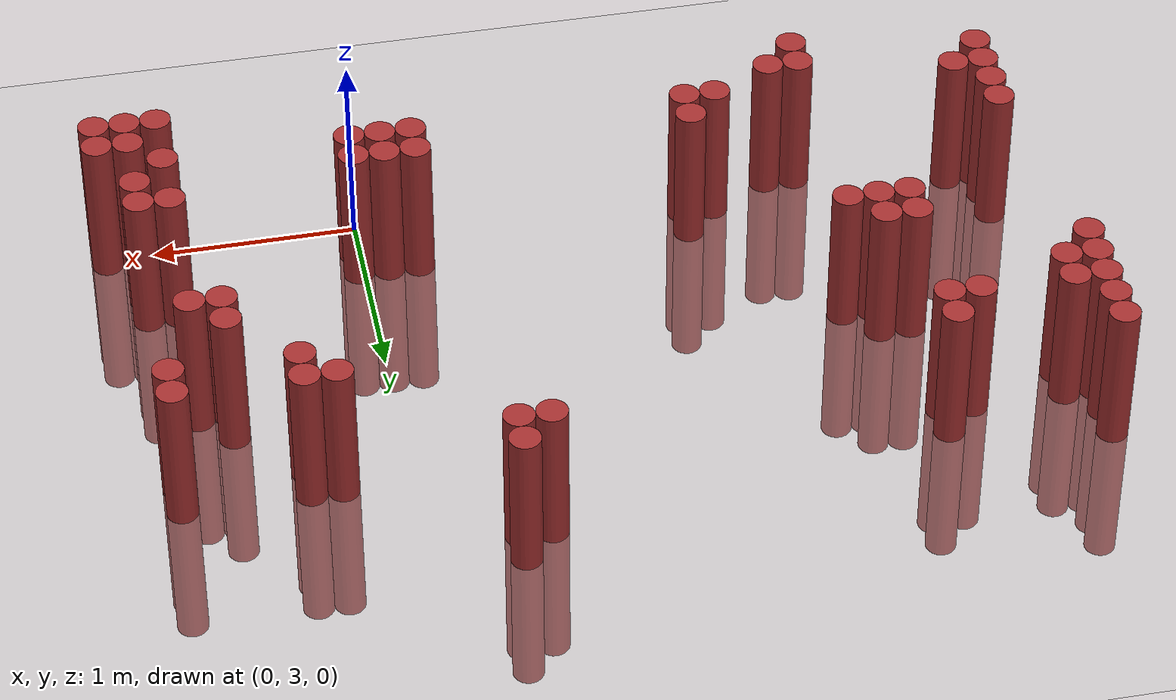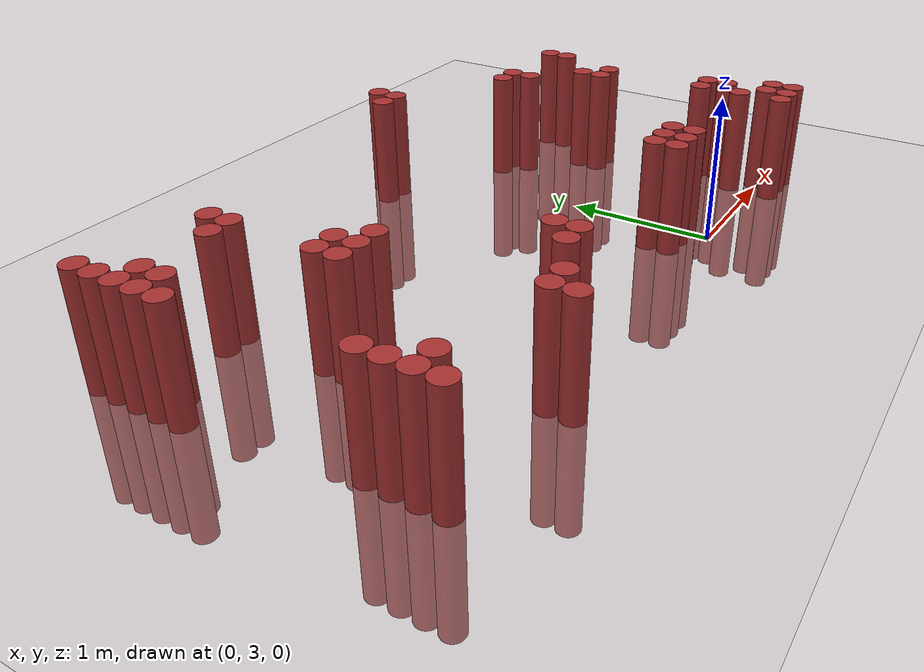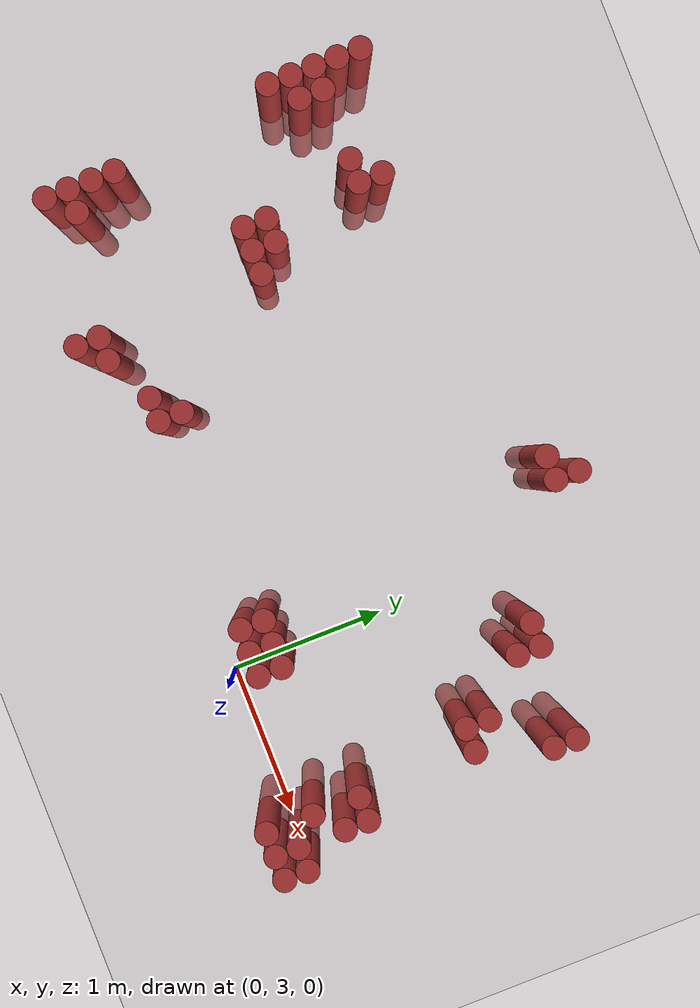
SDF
<sdf version="1.6">
 <world name="default">
  <model name="ground_plane">
   <static>1</static>
   <link name="link">
    <collision name="collision">
     <geometry><plane><normal>0 0 1</normal><size>100 100</size></plane></geometry>
     <surface><friction><ode><mu>100</mu><mu2>50</mu2></ode></friction></surface>
    </collision>
    <visual name="visual">
     <cast_shadows>0</cast_shadows>
     <geometry><plane><normal>0 0 1</normal><size>100 100</size></plane></geometry>
     <material>
      <script><uri>file://media/materials/scripts/gazebo.material</uri><name>Gazebo/Grey</name></script>
     </material>
    </visual>
   </link>
  </model>
  <model name="unit_cylinder_282">
   <static>1</static>
   <pose>-3.275000 4.525000 0.000000 0.000000 0.000000 0.000000</pose>
   <link name="link">
    <inertial>
     <mass>1</mass>
     <inertia><ixx>0.145833</ixx><ixy>0</ixy><ixz>0</ixz><iyy>0.145833</iyy><iyz>0</iyz><izz>0.125</izz></inertia>
    </inertial>
    <collision name="collision">
     <geometry><cylinder><radius>0.075000</radius><length>1.5</length></cylinder></geometry>
    </collision>
    <visual name="visual">
     <geometry><cylinder><radius>0.075000</radius><length>1.5</length></cylinder></geometry>
     <material>
      <ambient>0.648000 0.192000 0.192000 1</ambient>
      <diffuse>0.648000 0.192000 0.192000 1</diffuse>
     </material>
     <material>
      <script><name>Gazebo/Grey</name><uri>file://media/materials/scripts/gazebo.material</uri></script>
     </material>
    </visual>
   </link>
  </model>
  <model name="unit_cylinder_283">
   <static>1</static>
   <pose>-3.275000 4.675000 0.000000 0.000000 0.000000 0.000000</pose>
   <link name="link">
    <inertial>
     <mass>1</mass>
     <inertia><ixx>0.145833</ixx><ixy>0</ixy><ixz>0</ixz><iyy>0.145833</iyy><iyz>0</iyz><izz>0.125</izz></inertia>
    </inertial>
    <collision name="collision">
     <geometry><cylinder><radius>0.075000</radius><length>1.5</length></cylinder></geometry>
    </collision>
    <visual name="visual">
     <geometry><cylinder><radius>0.075000</radius><length>1.5</length></cylinder></geometry>
     <material>
      <ambient>0.648000 0.192000 0.192000 1</ambient>
      <diffuse>0.648000 0.192000 0.192000 1</diffuse>
     </material>
     <material>
      <script><name>Gazebo/Grey</name><uri>file://media/materials/scripts/gazebo.material</uri></script>
     </material>
    </visual>
   </link>
  </model>
  <model name="unit_cylinder_284">
   <static>1</static>
   <pose>-3.275000 4.825000 0.000000 0.000000 0.000000 0.000000</pose>
   <link name="link">
    <inertial>
     <mass>1</mass>
     <inertia><ixx>0.145833</ixx><ixy>0</ixy><ixz>0</ixz><iyy>0.145833</iyy><iyz>0</iyz><izz>0.125</izz></inertia>
    </inertial>
    <collision name="collision">
     <geometry><cylinder><radius>0.075000</radius><length>1.5</length></cylinder></geometry>
    </collision>
    <visual name="visual">
     <geometry><cylinder><radius>0.075000</radius><length>1.5</length></cylinder></geometry>
     <material>
      <ambient>0.648000 0.192000 0.192000 1</ambient>
      <diffuse>0.648000 0.192000 0.192000 1</diffuse>
     </material>
     <material>
      <script><name>Gazebo/Grey</name><uri>file://media/materials/scripts/gazebo.material</uri></script>
     </material>
    </visual>
   </link>
  </model>
  <model name="unit_cylinder_285">
   <static>1</static>
   <pose>-3.275000 4.975000 0.000000 0.000000 0.000000 0.000000</pose>
   <link name="link">
    <inertial>
     <mass>1</mass>
     <inertia><ixx>0.145833</ixx><ixy>0</ixy><ixz>0</ixz><iyy>0.145833</iyy><iyz>0</iyz><izz>0.125</izz></inertia>
    </inertial>
    <collision name="collision">
     <geometry><cylinder><radius>0.075000</radius><length>1.5</length></cylinder></geometry>
    </collision>
    <visual name="visual">
     <geometry><cylinder><radius>0.075000</radius><length>1.5</length></cylinder></geometry>
     <material>
      <ambient>0.648000 0.192000 0.192000 1</ambient>
      <diffuse>0.648000 0.192000 0.192000 1</diffuse>
     </material>
     <material>
      <script><name>Gazebo/Grey</name><uri>file://media/materials/scripts/gazebo.material</uri></script>
     </material>
    </visual>
   </link>
  </model>
  <model name="unit_cylinder_286">
   <static>1</static>
   <pose>-3.275000 5.125000 0.000000 0.000000 0.000000 0.000000</pose>
   <link name="link">
    <inertial>
     <mass>1</mass>
     <inertia><ixx>0.145833</ixx><ixy>0</ixy><ixz>0</ixz><iyy>0.145833</iyy><iyz>0</iyz><izz>0.125</izz></inertia>
    </inertial>
    <collision name="collision">
     <geometry><cylinder><radius>0.075000</radius><length>1.5</length></cylinder></geometry>
    </collision>
    <visual name="visual">
     <geometry><cylinder><radius>0.075000</radius><length>1.5</length></cylinder></geometry>
     <material>
      <ambient>0.648000 0.192000 0.192000 1</ambient>
      <diffuse>0.648000 0.192000 0.192000 1</diffuse>
     </material>
     <material>
      <script><name>Gazebo/Grey</name><uri>file://media/materials/scripts/gazebo.material</uri></script>
     </material>
    </visual>
   </link>
  </model>
  <model name="unit_cylinder_299">
   <static>1</static>
   <pose>-3.125000 3.025000 0.000000 0.000000 0.000000 0.000000</pose>
   <link name="link">
    <inertial>
     <mass>1</mass>
     <inertia><ixx>0.145833</ixx><ixy>0</ixy><ixz>0</ixz><iyy>0.145833</iyy><iyz>0</iyz><izz>0.125</izz></inertia>
    </inertial>
    <collision name="collision">
     <geometry><cylinder><radius>0.075000</radius><length>1.5</length></cylinder></geometry>
    </collision>
    <visual name="visual">
     <geometry><cylinder><radius>0.075000</radius><length>1.5</length></cylinder></geometry>
     <material>
      <ambient>0.648000 0.192000 0.192000 1</ambient>
      <diffuse>0.648000 0.192000 0.192000 1</diffuse>
     </material>
     <material>
      <script><name>Gazebo/Grey</name><uri>file://media/materials/scripts/gazebo.material</uri></script>
     </material>
    </visual>
   </link>
  </model>
  <model name="unit_cylinder_300">
   <static>1</static>
   <pose>-3.125000 3.175000 0.000000 0.000000 0.000000 0.000000</pose>
   <link name="link">
    <inertial>
     <mass>1</mass>
     <inertia><ixx>0.145833</ixx><ixy>0</ixy><ixz>0</ixz><iyy>0.145833</iyy><iyz>0</iyz><izz>0.125</izz></inertia>
    </inertial>
    <collision name="collision">
     <geometry><cylinder><radius>0.075000</radius><length>1.5</length></cylinder></geometry>
    </collision>
    <visual name="visual">
     <geometry><cylinder><radius>0.075000</radius><length>1.5</length></cylinder></geometry>
     <material>
      <ambient>0.648000 0.192000 0.192000 1</ambient>
      <diffuse>0.648000 0.192000 0.192000 1</diffuse>
     </material>
     <material>
      <script><name>Gazebo/Grey</name><uri>file://media/materials/scripts/gazebo.material</uri></script>
     </material>
    </visual>
   </link>
  </model>
  <model name="unit_cylinder_301">
   <static>1</static>
   <pose>-3.125000 3.325000 0.000000 0.000000 0.000000 0.000000</pose>
   <link name="link">
    <inertial>
     <mass>1</mass>
     <inertia><ixx>0.145833</ixx><ixy>0</ixy><ixz>0</ixz><iyy>0.145833</iyy><iyz>0</iyz><izz>0.125</izz></inertia>
    </inertial>
    <collision name="collision">
     <geometry><cylinder><radius>0.075000</radius><length>1.5</length></cylinder></geometry>
    </collision>
    <visual name="visual">
     <geometry><cylinder><radius>0.075000</radius><length>1.5</length></cylinder></geometry>
     <material>
      <ambient>0.648000 0.192000 0.192000 1</ambient>
      <diffuse>0.648000 0.192000 0.192000 1</diffuse>
     </material>
     <material>
      <script><name>Gazebo/Grey</name><uri>file://media/materials/scripts/gazebo.material</uri></script>
     </material>
    </visual>
   </link>
  </model>
  <model name="unit_cylinder_302">
   <static>1</static>
   <pose>-3.125000 3.475000 0.000000 0.000000 0.000000 0.000000</pose>
   <link name="link">
    <inertial>
     <mass>1</mass>
     <inertia><ixx>0.145833</ixx><ixy>0</ixy><ixz>0</ixz><iyy>0.145833</iyy><iyz>0</iyz><izz>0.125</izz></inertia>
    </inertial>
    <collision name="collision">
     <geometry><cylinder><radius>0.075000</radius><length>1.5</length></cylinder></geometry>
    </collision>
    <visual name="visual">
     <geometry><cylinder><radius>0.075000</radius><length>1.5</length></cylinder></geometry>
     <material>
      <ambient>0.648000 0.192000 0.192000 1</ambient>
      <diffuse>0.648000 0.192000 0.192000 1</diffuse>
     </material>
     <material>
      <script><name>Gazebo/Grey</name><uri>file://media/materials/scripts/gazebo.material</uri></script>
     </material>
    </visual>
   </link>
  </model>
  <model name="unit_cylinder_303">
   <static>1</static>
   <pose>-3.125000 4.675000 0.000000 0.000000 0.000000 0.000000</pose>
   <link name="link">
    <inertial>
     <mass>1</mass>
     <inertia><ixx>0.145833</ixx><ixy>0</ixy><ixz>0</ixz><iyy>0.145833</iyy><iyz>0</iyz><izz>0.125</izz></inertia>
    </inertial>
    <collision name="collision">
     <geometry><cylinder><radius>0.075000</radius><length>1.5</length></cylinder></geometry>
    </collision>
    <visual name="visual">
     <geometry><cylinder><radius>0.075000</radius><length>1.5</length></cylinder></geometry>
     <material>
      <ambient>0.648000 0.192000 0.192000 1</ambient>
      <diffuse>0.648000 0.192000 0.192000 1</diffuse>
     </material>
     <material>
      <script><name>Gazebo/Grey</name><uri>file://media/materials/scripts/gazebo.material</uri></script>
     </material>
    </visual>
   </link>
  </model>
  <model name="unit_cylinder_304">
   <static>1</static>
   <pose>-3.125000 4.825000 0.000000 0.000000 0.000000 0.000000</pose>
   <link name="link">
    <inertial>
     <mass>1</mass>
     <inertia><ixx>0.145833</ixx><ixy>0</ixy><ixz>0</ixz><iyy>0.145833</iyy><iyz>0</iyz><izz>0.125</izz></inertia>
    </inertial>
    <collision name="collision">
     <geometry><cylinder><radius>0.075000</radius><length>1.5</length></cylinder></geometry>
    </collision>
    <visual name="visual">
     <geometry><cylinder><radius>0.075000</radius><length>1.5</length></cylinder></geometry>
     <material>
      <ambient>0.648000 0.192000 0.192000 1</ambient>
      <diffuse>0.648000 0.192000 0.192000 1</diffuse>
     </material>
     <material>
      <script><name>Gazebo/Grey</name><uri>file://media/materials/scripts/gazebo.material</uri></script>
     </material>
    </visual>
   </link>
  </model>
  <model name="unit_cylinder_308">
   <static>1</static>
   <pose>-2.975000 3.175000 0.000000 0.000000 0.000000 0.000000</pose>
   <link name="link">
    <inertial>
     <mass>1</mass>
     <inertia><ixx>0.145833</ixx><ixy>0</ixy><ixz>0</ixz><iyy>0.145833</iyy><iyz>0</iyz><izz>0.125</izz></inertia>
    </inertial>
    <collision name="collision">
     <geometry><cylinder><radius>0.075000</radius><length>1.5</length></cylinder></geometry>
    </collision>
    <visual name="visual">
     <geometry><cylinder><radius>0.075000</radius><length>1.5</length></cylinder></geometry>
     <material>
      <ambient>0.648000 0.192000 0.192000 1</ambient>
      <diffuse>0.648000 0.192000 0.192000 1</diffuse>
     </material>
     <material>
      <script><name>Gazebo/Grey</name><uri>file://media/materials/scripts/gazebo.material</uri></script>
     </material>
    </visual>
   </link>
  </model>
  <model name="unit_cylinder_316">
   <static>1</static>
   <pose>-2.675000 4.825000 0.000000 0.000000 0.000000 0.000000</pose>
   <link name="link">
    <inertial>
     <mass>1</mass>
     <inertia><ixx>0.145833</ixx><ixy>0</ixy><ixz>0</ixz><iyy>0.145833</iyy><iyz>0</iyz><izz>0.125</izz></inertia>
    </inertial>
    <collision name="collision">
     <geometry><cylinder><radius>0.075000</radius><length>1.5</length></cylinder></geometry>
    </collision>
    <visual name="visual">
     <geometry><cylinder><radius>0.075000</radius><length>1.5</length></cylinder></geometry>
     <material>
      <ambient>0.648000 0.192000 0.192000 1</ambient>
      <diffuse>0.648000 0.192000 0.192000 1</diffuse>
     </material>
     <material>
      <script><name>Gazebo/Grey</name><uri>file://media/materials/scripts/gazebo.material</uri></script>
     </material>
    </visual>
   </link>
  </model>
  <model name="unit_cylinder_319">
   <static>1</static>
   <pose>-2.525000 4.075000 0.000000 0.000000 0.000000 0.000000</pose>
   <link name="link">
    <inertial>
     <mass>1</mass>
     <inertia><ixx>0.145833</ixx><ixy>0</ixy><ixz>0</ixz><iyy>0.145833</iyy><iyz>0</iyz><izz>0.125</izz></inertia>
    </inertial>
    <collision name="collision">
     <geometry><cylinder><radius>0.075000</radius><length>1.5</length></cylinder></geometry>
    </collision>
    <visual name="visual">
     <geometry><cylinder><radius>0.075000</radius><length>1.5</length></cylinder></geometry>
     <material>
      <ambient>0.648000 0.192000 0.192000 1</ambient>
      <diffuse>0.648000 0.192000 0.192000 1</diffuse>
     </material>
     <material>
      <script><name>Gazebo/Grey</name><uri>file://media/materials/scripts/gazebo.material</uri></script>
     </material>
    </visual>
   </link>
  </model>
  <model name="unit_cylinder_320">
   <static>1</static>
   <pose>-2.525000 4.225000 0.000000 0.000000 0.000000 0.000000</pose>
   <link name="link">
    <inertial>
     <mass>1</mass>
     <inertia><ixx>0.145833</ixx><ixy>0</ixy><ixz>0</ixz><iyy>0.145833</iyy><iyz>0</iyz><izz>0.125</izz></inertia>
    </inertial>
    <collision name="collision">
     <geometry><cylinder><radius>0.075000</radius><length>1.5</length></cylinder></geometry>
    </collision>
    <visual name="visual">
     <geometry><cylinder><radius>0.075000</radius><length>1.5</length></cylinder></geometry>
     <material>
      <ambient>0.648000 0.192000 0.192000 1</ambient>
      <diffuse>0.648000 0.192000 0.192000 1</diffuse>
     </material>
     <material>
      <script><name>Gazebo/Grey</name><uri>file://media/materials/scripts/gazebo.material</uri></script>
     </material>
    </visual>
   </link>
  </model>
  <model name="unit_cylinder_321">
   <static>1</static>
   <pose>-2.525000 4.825000 0.000000 0.000000 0.000000 0.000000</pose>
   <link name="link">
    <inertial>
     <mass>1</mass>
     <inertia><ixx>0.145833</ixx><ixy>0</ixy><ixz>0</ixz><iyy>0.145833</iyy><iyz>0</iyz><izz>0.125</izz></inertia>
    </inertial>
    <collision name="collision">
     <geometry><cylinder><radius>0.075000</radius><length>1.5</length></cylinder></geometry>
    </collision>
    <visual name="visual">
     <geometry><cylinder><radius>0.075000</radius><length>1.5</length></cylinder></geometry>
     <material>
      <ambient>0.648000 0.192000 0.192000 1</ambient>
      <diffuse>0.648000 0.192000 0.192000 1</diffuse>
     </material>
     <material>
      <script><name>Gazebo/Grey</name><uri>file://media/materials/scripts/gazebo.material</uri></script>
     </material>
    </visual>
   </link>
  </model>
  <model name="unit_cylinder_322">
   <static>1</static>
   <pose>-2.525000 4.975000 0.000000 0.000000 0.000000 0.000000</pose>
   <link name="link">
    <inertial>
     <mass>1</mass>
     <inertia><ixx>0.145833</ixx><ixy>0</ixy><ixz>0</ixz><iyy>0.145833</iyy><iyz>0</iyz><izz>0.125</izz></inertia>
    </inertial>
    <collision name="collision">
     <geometry><cylinder><radius>0.075000</radius><length>1.5</length></cylinder></geometry>
    </collision>
    <visual name="visual">
     <geometry><cylinder><radius>0.075000</radius><length>1.5</length></cylinder></geometry>
     <material>
      <ambient>0.648000 0.192000 0.192000 1</ambient>
      <diffuse>0.648000 0.192000 0.192000 1</diffuse>
     </material>
     <material>
      <script><name>Gazebo/Grey</name><uri>file://media/materials/scripts/gazebo.material</uri></script>
     </material>
    </visual>
   </link>
  </model>
  <model name="unit_cylinder_325">
   <static>1</static>
   <pose>-2.375000 4.075000 0.000000 0.000000 0.000000 0.000000</pose>
   <link name="link">
    <inertial>
     <mass>1</mass>
     <inertia><ixx>0.145833</ixx><ixy>0</ixy><ixz>0</ixz><iyy>0.145833</iyy><iyz>0</iyz><izz>0.125</izz></inertia>
    </inertial>
    <collision name="collision">
     <geometry><cylinder><radius>0.075000</radius><length>1.5</length></cylinder></geometry>
    </collision>
    <visual name="visual">
     <geometry><cylinder><radius>0.075000</radius><length>1.5</length></cylinder></geometry>
     <material>
      <ambient>0.648000 0.192000 0.192000 1</ambient>
      <diffuse>0.648000 0.192000 0.192000 1</diffuse>
     </material>
     <material>
      <script><name>Gazebo/Grey</name><uri>file://media/materials/scripts/gazebo.material</uri></script>
     </material>
    </visual>
   </link>
  </model>
  <model name="unit_cylinder_326">
   <static>1</static>
   <pose>-2.375000 4.225000 0.000000 0.000000 0.000000 0.000000</pose>
   <link name="link">
    <inertial>
     <mass>1</mass>
     <inertia><ixx>0.145833</ixx><ixy>0</ixy><ixz>0</ixz><iyy>0.145833</iyy><iyz>0</iyz><izz>0.125</izz></inertia>
    </inertial>
    <collision name="collision">
     <geometry><cylinder><radius>0.075000</radius><length>1.5</length></cylinder></geometry>
    </collision>
    <visual name="visual">
     <geometry><cylinder><radius>0.075000</radius><length>1.5</length></cylinder></geometry>
     <material>
      <ambient>0.648000 0.192000 0.192000 1</ambient>
      <diffuse>0.648000 0.192000 0.192000 1</diffuse>
     </material>
     <material>
      <script><name>Gazebo/Grey</name><uri>file://media/materials/scripts/gazebo.material</uri></script>
     </material>
    </visual>
   </link>
  </model>
  <model name="unit_cylinder_328">
   <static>1</static>
   <pose>-2.225000 2.875000 0.000000 0.000000 0.000000 0.000000</pose>
   <link name="link">
    <inertial>
     <mass>1</mass>
     <inertia><ixx>0.145833</ixx><ixy>0</ixy><ixz>0</ixz><iyy>0.145833</iyy><iyz>0</iyz><izz>0.125</izz></inertia>
    </inertial>
    <collision name="collision">
     <geometry><cylinder><radius>0.075000</radius><length>1.5</length></cylinder></geometry>
    </collision>
    <visual name="visual">
     <geometry><cylinder><radius>0.075000</radius><length>1.5</length></cylinder></geometry>
     <material>
      <ambient>0.648000 0.192000 0.192000 1</ambient>
      <diffuse>0.648000 0.192000 0.192000 1</diffuse>
     </material>
     <material>
      <script><name>Gazebo/Grey</name><uri>file://media/materials/scripts/gazebo.material</uri></script>
     </material>
    </visual>
   </link>
  </model>
  <model name="unit_cylinder_329">
   <static>1</static>
   <pose>-2.225000 3.025000 0.000000 0.000000 0.000000 0.000000</pose>
   <link name="link">
    <inertial>
     <mass>1</mass>
     <inertia><ixx>0.145833</ixx><ixy>0</ixy><ixz>0</ixz><iyy>0.145833</iyy><iyz>0</iyz><izz>0.125</izz></inertia>
    </inertial>
    <collision name="collision">
     <geometry><cylinder><radius>0.075000</radius><length>1.5</length></cylinder></geometry>
    </collision>
    <visual name="visual">
     <geometry><cylinder><radius>0.075000</radius><length>1.5</length></cylinder></geometry>
     <material>
      <ambient>0.648000 0.192000 0.192000 1</ambient>
      <diffuse>0.648000 0.192000 0.192000 1</diffuse>
     </material>
     <material>
      <script><name>Gazebo/Grey</name><uri>file://media/materials/scripts/gazebo.material</uri></script>
     </material>
    </visual>
   </link>
  </model>
  <model name="unit_cylinder_330">
   <static>1</static>
   <pose>-2.225000 4.075000 0.000000 0.000000 0.000000 0.000000</pose>
   <link name="link">
    <inertial>
     <mass>1</mass>
     <inertia><ixx>0.145833</ixx><ixy>0</ixy><ixz>0</ixz><iyy>0.145833</iyy><iyz>0</iyz><izz>0.125</izz></inertia>
    </inertial>
    <collision name="collision">
     <geometry><cylinder><radius>0.075000</radius><length>1.5</length></cylinder></geometry>
    </collision>
    <visual name="visual">
     <geometry><cylinder><radius>0.075000</radius><length>1.5</length></cylinder></geometry>
     <material>
      <ambient>0.648000 0.192000 0.192000 1</ambient>
      <diffuse>0.648000 0.192000 0.192000 1</diffuse>
     </material>
     <material>
      <script><name>Gazebo/Grey</name><uri>file://media/materials/scripts/gazebo.material</uri></script>
     </material>
    </visual>
   </link>
  </model>
  <model name="unit_cylinder_332">
   <static>1</static>
   <pose>-2.075000 3.025000 0.000000 0.000000 0.000000 0.000000</pose>
   <link name="link">
    <inertial>
     <mass>1</mass>
     <inertia><ixx>0.145833</ixx><ixy>0</ixy><ixz>0</ixz><iyy>0.145833</iyy><iyz>0</iyz><izz>0.125</izz></inertia>
    </inertial>
    <collision name="collision">
     <geometry><cylinder><radius>0.075000</radius><length>1.5</length></cylinder></geometry>
    </collision>
    <visual name="visual">
     <geometry><cylinder><radius>0.075000</radius><length>1.5</length></cylinder></geometry>
     <material>
      <ambient>0.648000 0.192000 0.192000 1</ambient>
      <diffuse>0.648000 0.192000 0.192000 1</diffuse>
     </material>
     <material>
      <script><name>Gazebo/Grey</name><uri>file://media/materials/scripts/gazebo.material</uri></script>
     </material>
    </visual>
   </link>
  </model>
  <model name="unit_cylinder_342">
   <static>1</static>
   <pose>-1.775000 3.175000 0.000000 0.000000 0.000000 0.000000</pose>
   <link name="link">
    <inertial>
     <mass>1</mass>
     <inertia><ixx>0.145833</ixx><ixy>0</ixy><ixz>0</ixz><iyy>0.145833</iyy><iyz>0</iyz><izz>0.125</izz></inertia>
    </inertial>
    <collision name="collision">
     <geometry><cylinder><radius>0.075000</radius><length>1.5</length></cylinder></geometry>
    </collision>
    <visual name="visual">
     <geometry><cylinder><radius>0.075000</radius><length>1.5</length></cylinder></geometry>
     <material>
      <ambient>0.648000 0.192000 0.192000 1</ambient>
      <diffuse>0.648000 0.192000 0.192000 1</diffuse>
     </material>
     <material>
      <script><name>Gazebo/Grey</name><uri>file://media/materials/scripts/gazebo.material</uri></script>
     </material>
    </visual>
   </link>
  </model>
  <model name="unit_cylinder_345">
   <static>1</static>
   <pose>-1.625000 3.175000 0.000000 0.000000 0.000000 0.000000</pose>
   <link name="link">
    <inertial>
     <mass>1</mass>
     <inertia><ixx>0.145833</ixx><ixy>0</ixy><ixz>0</ixz><iyy>0.145833</iyy><iyz>0</iyz><izz>0.125</izz></inertia>
    </inertial>
    <collision name="collision">
     <geometry><cylinder><radius>0.075000</radius><length>1.5</length></cylinder></geometry>
    </collision>
    <visual name="visual">
     <geometry><cylinder><radius>0.075000</radius><length>1.5</length></cylinder></geometry>
     <material>
      <ambient>0.648000 0.192000 0.192000 1</ambient>
      <diffuse>0.648000 0.192000 0.192000 1</diffuse>
     </material>
     <material>
      <script><name>Gazebo/Grey</name><uri>file://media/materials/scripts/gazebo.material</uri></script>
     </material>
    </visual>
   </link>
  </model>
  <model name="unit_cylinder_346">
   <static>1</static>
   <pose>-1.625000 3.325000 0.000000 0.000000 0.000000 0.000000</pose>
   <link name="link">
    <inertial>
     <mass>1</mass>
     <inertia><ixx>0.145833</ixx><ixy>0</ixy><ixz>0</ixz><iyy>0.145833</iyy><iyz>0</iyz><izz>0.125</izz></inertia>
    </inertial>
    <collision name="collision">
     <geometry><cylinder><radius>0.075000</radius><length>1.5</length></cylinder></geometry>
    </collision>
    <visual name="visual">
     <geometry><cylinder><radius>0.075000</radius><length>1.5</length></cylinder></geometry>
     <material>
      <ambient>0.648000 0.192000 0.192000 1</ambient>
      <diffuse>0.648000 0.192000 0.192000 1</diffuse>
     </material>
     <material>
      <script><name>Gazebo/Grey</name><uri>file://media/materials/scripts/gazebo.material</uri></script>
     </material>
    </visual>
   </link>
  </model>
  <model name="unit_cylinder_364">
   <static>1</static>
   <pose>-0.575000 5.275000 0.000000 0.000000 0.000000 0.000000</pose>
   <link name="link">
    <inertial>
     <mass>1</mass>
     <inertia><ixx>0.145833</ixx><ixy>0</ixy><ixz>0</ixz><iyy>0.145833</iyy><iyz>0</iyz><izz>0.125</izz></inertia>
    </inertial>
    <collision name="collision">
     <geometry><cylinder><radius>0.075000</radius><length>1.5</length></cylinder></geometry>
    </collision>
    <visual name="visual">
     <geometry><cylinder><radius>0.075000</radius><length>1.5</length></cylinder></geometry>
     <material>
      <ambient>0.648000 0.192000 0.192000 1</ambient>
      <diffuse>0.648000 0.192000 0.192000 1</diffuse>
     </material>
     <material>
      <script><name>Gazebo/Grey</name><uri>file://media/materials/scripts/gazebo.material</uri></script>
     </material>
    </visual>
   </link>
  </model>
  <model name="unit_cylinder_371">
   <static>1</static>
   <pose>-0.425000 5.275000 0.000000 0.000000 0.000000 0.000000</pose>
   <link name="link">
    <inertial>
     <mass>1</mass>
     <inertia><ixx>0.145833</ixx><ixy>0</ixy><ixz>0</ixz><iyy>0.145833</iyy><iyz>0</iyz><izz>0.125</izz></inertia>
    </inertial>
    <collision name="collision">
     <geometry><cylinder><radius>0.075000</radius><length>1.5</length></cylinder></geometry>
    </collision>
    <visual name="visual">
     <geometry><cylinder><radius>0.075000</radius><length>1.5</length></cylinder></geometry>
     <material>
      <ambient>0.648000 0.192000 0.192000 1</ambient>
      <diffuse>0.648000 0.192000 0.192000 1</diffuse>
     </material>
     <material>
      <script><name>Gazebo/Grey</name><uri>file://media/materials/scripts/gazebo.material</uri></script>
     </material>
    </visual>
   </link>
  </model>
  <model name="unit_cylinder_372">
   <static>1</static>
   <pose>-0.425000 5.425000 0.000000 0.000000 0.000000 0.000000</pose>
   <link name="link">
    <inertial>
     <mass>1</mass>
     <inertia><ixx>0.145833</ixx><ixy>0</ixy><ixz>0</ixz><iyy>0.145833</iyy><iyz>0</iyz><izz>0.125</izz></inertia>
    </inertial>
    <collision name="collision">
     <geometry><cylinder><radius>0.075000</radius><length>1.5</length></cylinder></geometry>
    </collision>
    <visual name="visual">
     <geometry><cylinder><radius>0.075000</radius><length>1.5</length></cylinder></geometry>
     <material>
      <ambient>0.648000 0.192000 0.192000 1</ambient>
      <diffuse>0.648000 0.192000 0.192000 1</diffuse>
     </material>
     <material>
      <script><name>Gazebo/Grey</name><uri>file://media/materials/scripts/gazebo.material</uri></script>
     </material>
    </visual>
   </link>
  </model>
  <model name="unit_cylinder_376">
   <static>1</static>
   <pose>-0.275000 3.175000 0.000000 0.000000 0.000000 0.000000</pose>
   <link name="link">
    <inertial>
     <mass>1</mass>
     <inertia><ixx>0.145833</ixx><ixy>0</ixy><ixz>0</ixz><iyy>0.145833</iyy><iyz>0</iyz><izz>0.125</izz></inertia>
    </inertial>
    <collision name="collision">
     <geometry><cylinder><radius>0.075000</radius><length>1.5</length></cylinder></geometry>
    </collision>
    <visual name="visual">
     <geometry><cylinder><radius>0.075000</radius><length>1.5</length></cylinder></geometry>
     <material>
      <ambient>0.648000 0.192000 0.192000 1</ambient>
      <diffuse>0.648000 0.192000 0.192000 1</diffuse>
     </material>
     <material>
      <script><name>Gazebo/Grey</name><uri>file://media/materials/scripts/gazebo.material</uri></script>
     </material>
    </visual>
   </link>
  </model>
  <model name="unit_cylinder_377">
   <static>1</static>
   <pose>-0.275000 3.325000 0.000000 0.000000 0.000000 0.000000</pose>
   <link name="link">
    <inertial>
     <mass>1</mass>
     <inertia><ixx>0.145833</ixx><ixy>0</ixy><ixz>0</ixz><iyy>0.145833</iyy><iyz>0</iyz><izz>0.125</izz></inertia>
    </inertial>
    <collision name="collision">
     <geometry><cylinder><radius>0.075000</radius><length>1.5</length></cylinder></geometry>
    </collision>
    <visual name="visual">
     <geometry><cylinder><radius>0.075000</radius><length>1.5</length></cylinder></geometry>
     <material>
      <ambient>0.648000 0.192000 0.192000 1</ambient>
      <diffuse>0.648000 0.192000 0.192000 1</diffuse>
     </material>
     <material>
      <script><name>Gazebo/Grey</name><uri>file://media/materials/scripts/gazebo.material</uri></script>
     </material>
    </visual>
   </link>
  </model>
  <model name="unit_cylinder_381">
   <static>1</static>
   <pose>-0.125000 3.175000 0.000000 0.000000 0.000000 0.000000</pose>
   <link name="link">
    <inertial>
     <mass>1</mass>
     <inertia><ixx>0.145833</ixx><ixy>0</ixy><ixz>0</ixz><iyy>0.145833</iyy><iyz>0</iyz><izz>0.125</izz></inertia>
    </inertial>
    <collision name="collision">
     <geometry><cylinder><radius>0.075000</radius><length>1.5</length></cylinder></geometry>
    </collision>
    <visual name="visual">
     <geometry><cylinder><radius>0.075000</radius><length>1.5</length></cylinder></geometry>
     <material>
      <ambient>0.648000 0.192000 0.192000 1</ambient>
      <diffuse>0.648000 0.192000 0.192000 1</diffuse>
     </material>
     <material>
      <script><name>Gazebo/Grey</name><uri>file://media/materials/scripts/gazebo.material</uri></script>
     </material>
    </visual>
   </link>
  </model>
  <model name="unit_cylinder_382">
   <static>1</static>
   <pose>-0.125000 3.325000 0.000000 0.000000 0.000000 0.000000</pose>
   <link name="link">
    <inertial>
     <mass>1</mass>
     <inertia><ixx>0.145833</ixx><ixy>0</ixy><ixz>0</ixz><iyy>0.145833</iyy><iyz>0</iyz><izz>0.125</izz></inertia>
    </inertial>
    <collision name="collision">
     <geometry><cylinder><radius>0.075000</radius><length>1.5</length></cylinder></geometry>
    </collision>
    <visual name="visual">
     <geometry><cylinder><radius>0.075000</radius><length>1.5</length></cylinder></geometry>
     <material>
      <ambient>0.648000 0.192000 0.192000 1</ambient>
      <diffuse>0.648000 0.192000 0.192000 1</diffuse>
     </material>
     <material>
      <script><name>Gazebo/Grey</name><uri>file://media/materials/scripts/gazebo.material</uri></script>
     </material>
    </visual>
   </link>
  </model>
  <model name="unit_cylinder_384">
   <static>1</static>
   <pose>0.025000 3.175000 0.000000 0.000000 0.000000 0.000000</pose>
   <link name="link">
    <inertial>
     <mass>1</mass>
     <inertia><ixx>0.145833</ixx><ixy>0</ixy><ixz>0</ixz><iyy>0.145833</iyy><iyz>0</iyz><izz>0.125</izz></inertia>
    </inertial>
    <collision name="collision">
     <geometry><cylinder><radius>0.075000</radius><length>1.5</length></cylinder></geometry>
    </collision>
    <visual name="visual">
     <geometry><cylinder><radius>0.075000</radius><length>1.5</length></cylinder></geometry>
     <material>
      <ambient>0.648000 0.192000 0.192000 1</ambient>
      <diffuse>0.648000 0.192000 0.192000 1</diffuse>
     </material>
     <material>
      <script><name>Gazebo/Grey</name><uri>file://media/materials/scripts/gazebo.material</uri></script>
     </material>
    </visual>
   </link>
  </model>
  <model name="unit_cylinder_385">
   <static>1</static>
   <pose>0.025000 3.325000 0.000000 0.000000 0.000000 0.000000</pose>
   <link name="link">
    <inertial>
     <mass>1</mass>
     <inertia><ixx>0.145833</ixx><ixy>0</ixy><ixz>0</ixz><iyy>0.145833</iyy><iyz>0</iyz><izz>0.125</izz></inertia>
    </inertial>
    <collision name="collision">
     <geometry><cylinder><radius>0.075000</radius><length>1.5</length></cylinder></geometry>
    </collision>
    <visual name="visual">
     <geometry><cylinder><radius>0.075000</radius><length>1.5</length></cylinder></geometry>
     <material>
      <ambient>0.648000 0.192000 0.192000 1</ambient>
      <diffuse>0.648000 0.192000 0.192000 1</diffuse>
     </material>
     <material>
      <script><name>Gazebo/Grey</name><uri>file://media/materials/scripts/gazebo.material</uri></script>
     </material>
    </visual>
   </link>
  </model>
  <model name="unit_cylinder_388">
   <static>1</static>
   <pose>0.325000 4.825000 0.000000 0.000000 0.000000 0.000000</pose>
   <link name="link">
    <inertial>
     <mass>1</mass>
     <inertia><ixx>0.145833</ixx><ixy>0</ixy><ixz>0</ixz><iyy>0.145833</iyy><iyz>0</iyz><izz>0.125</izz></inertia>
    </inertial>
    <collision name="collision">
     <geometry><cylinder><radius>0.075000</radius><length>1.5</length></cylinder></geometry>
    </collision>
    <visual name="visual">
     <geometry><cylinder><radius>0.075000</radius><length>1.5</length></cylinder></geometry>
     <material>
      <ambient>0.648000 0.192000 0.192000 1</ambient>
      <diffuse>0.648000 0.192000 0.192000 1</diffuse>
     </material>
     <material>
      <script><name>Gazebo/Grey</name><uri>file://media/materials/scripts/gazebo.material</uri></script>
     </material>
    </visual>
   </link>
  </model>
  <model name="unit_cylinder_391">
   <static>1</static>
   <pose>0.475000 4.675000 0.000000 0.000000 0.000000 0.000000</pose>
   <link name="link">
    <inertial>
     <mass>1</mass>
     <inertia><ixx>0.145833</ixx><ixy>0</ixy><ixz>0</ixz><iyy>0.145833</iyy><iyz>0</iyz><izz>0.125</izz></inertia>
    </inertial>
    <collision name="collision">
     <geometry><cylinder><radius>0.075000</radius><length>1.5</length></cylinder></geometry>
    </collision>
    <visual name="visual">
     <geometry><cylinder><radius>0.075000</radius><length>1.5</length></cylinder></geometry>
     <material>
      <ambient>0.648000 0.192000 0.192000 1</ambient>
      <diffuse>0.648000 0.192000 0.192000 1</diffuse>
     </material>
     <material>
      <script><name>Gazebo/Grey</name><uri>file://media/materials/scripts/gazebo.material</uri></script>
     </material>
    </visual>
   </link>
  </model>
  <model name="unit_cylinder_392">
   <static>1</static>
   <pose>0.475000 4.825000 0.000000 0.000000 0.000000 0.000000</pose>
   <link name="link">
    <inertial>
     <mass>1</mass>
     <inertia><ixx>0.145833</ixx><ixy>0</ixy><ixz>0</ixz><iyy>0.145833</iyy><iyz>0</iyz><izz>0.125</izz></inertia>
    </inertial>
    <collision name="collision">
     <geometry><cylinder><radius>0.075000</radius><length>1.5</length></cylinder></geometry>
    </collision>
    <visual name="visual">
     <geometry><cylinder><radius>0.075000</radius><length>1.5</length></cylinder></geometry>
     <material>
      <ambient>0.648000 0.192000 0.192000 1</ambient>
      <diffuse>0.648000 0.192000 0.192000 1</diffuse>
     </material>
     <material>
      <script><name>Gazebo/Grey</name><uri>file://media/materials/scripts/gazebo.material</uri></script>
     </material>
    </visual>
   </link>
  </model>
  <model name="unit_cylinder_398">
   <static>1</static>
   <pose>0.775000 4.225000 0.000000 0.000000 0.000000 0.000000</pose>
   <link name="link">
    <inertial>
     <mass>1</mass>
     <inertia><ixx>0.145833</ixx><ixy>0</ixy><ixz>0</ixz><iyy>0.145833</iyy><iyz>0</iyz><izz>0.125</izz></inertia>
    </inertial>
    <collision name="collision">
     <geometry><cylinder><radius>0.075000</radius><length>1.5</length></cylinder></geometry>
    </collision>
    <visual name="visual">
     <geometry><cylinder><radius>0.075000</radius><length>1.5</length></cylinder></geometry>
     <material>
      <ambient>0.648000 0.192000 0.192000 1</ambient>
      <diffuse>0.648000 0.192000 0.192000 1</diffuse>
     </material>
     <material>
      <script><name>Gazebo/Grey</name><uri>file://media/materials/scripts/gazebo.material</uri></script>
     </material>
    </visual>
   </link>
  </model>
  <model name="unit_cylinder_399">
   <static>1</static>
   <pose>0.775000 4.375000 0.000000 0.000000 0.000000 0.000000</pose>
   <link name="link">
    <inertial>
     <mass>1</mass>
     <inertia><ixx>0.145833</ixx><ixy>0</ixy><ixz>0</ixz><iyy>0.145833</iyy><iyz>0</iyz><izz>0.125</izz></inertia>
    </inertial>
    <collision name="collision">
     <geometry><cylinder><radius>0.075000</radius><length>1.5</length></cylinder></geometry>
    </collision>
    <visual name="visual">
     <geometry><cylinder><radius>0.075000</radius><length>1.5</length></cylinder></geometry>
     <material>
      <ambient>0.648000 0.192000 0.192000 1</ambient>
      <diffuse>0.648000 0.192000 0.192000 1</diffuse>
     </material>
     <material>
      <script><name>Gazebo/Grey</name><uri>file://media/materials/scripts/gazebo.material</uri></script>
     </material>
    </visual>
   </link>
  </model>
  <model name="unit_cylinder_400">
   <static>1</static>
   <pose>0.925000 2.875000 0.000000 0.000000 0.000000 0.000000</pose>
   <link name="link">
    <inertial>
     <mass>1</mass>
     <inertia><ixx>0.145833</ixx><ixy>0</ixy><ixz>0</ixz><iyy>0.145833</iyy><iyz>0</iyz><izz>0.125</izz></inertia>
    </inertial>
    <collision name="collision">
     <geometry><cylinder><radius>0.075000</radius><length>1.5</length></cylinder></geometry>
    </collision>
    <visual name="visual">
     <geometry><cylinder><radius>0.075000</radius><length>1.5</length></cylinder></geometry>
     <material>
      <ambient>0.648000 0.192000 0.192000 1</ambient>
      <diffuse>0.648000 0.192000 0.192000 1</diffuse>
     </material>
     <material>
      <script><name>Gazebo/Grey</name><uri>file://media/materials/scripts/gazebo.material</uri></script>
     </material>
    </visual>
   </link>
  </model>
  <model name="unit_cylinder_401">
   <static>1</static>
   <pose>0.925000 3.175000 0.000000 0.000000 0.000000 0.000000</pose>
   <link name="link">
    <inertial>
     <mass>1</mass>
     <inertia><ixx>0.145833</ixx><ixy>0</ixy><ixz>0</ixz><iyy>0.145833</iyy><iyz>0</iyz><izz>0.125</izz></inertia>
    </inertial>
    <collision name="collision">
     <geometry><cylinder><radius>0.075000</radius><length>1.5</length></cylinder></geometry>
    </collision>
    <visual name="visual">
     <geometry><cylinder><radius>0.075000</radius><length>1.5</length></cylinder></geometry>
     <material>
      <ambient>0.648000 0.192000 0.192000 1</ambient>
      <diffuse>0.648000 0.192000 0.192000 1</diffuse>
     </material>
     <material>
      <script><name>Gazebo/Grey</name><uri>file://media/materials/scripts/gazebo.material</uri></script>
     </material>
    </visual>
   </link>
  </model>
  <model name="unit_cylinder_402">
   <static>1</static>
   <pose>0.925000 3.475000 0.000000 0.000000 0.000000 0.000000</pose>
   <link name="link">
    <inertial>
     <mass>1</mass>
     <inertia><ixx>0.145833</ixx><ixy>0</ixy><ixz>0</ixz><iyy>0.145833</iyy><iyz>0</iyz><izz>0.125</izz></inertia>
    </inertial>
    <collision name="collision">
     <geometry><cylinder><radius>0.075000</radius><length>1.5</length></cylinder></geometry>
    </collision>
    <visual name="visual">
     <geometry><cylinder><radius>0.075000</radius><length>1.5</length></cylinder></geometry>
     <material>
      <ambient>0.648000 0.192000 0.192000 1</ambient>
      <diffuse>0.648000 0.192000 0.192000 1</diffuse>
     </material>
     <material>
      <script><name>Gazebo/Grey</name><uri>file://media/materials/scripts/gazebo.material</uri></script>
     </material>
    </visual>
   </link>
  </model>
  <model name="unit_cylinder_403">
   <static>1</static>
   <pose>0.925000 4.225000 0.000000 0.000000 0.000000 0.000000</pose>
   <link name="link">
    <inertial>
     <mass>1</mass>
     <inertia><ixx>0.145833</ixx><ixy>0</ixy><ixz>0</ixz><iyy>0.145833</iyy><iyz>0</iyz><izz>0.125</izz></inertia>
    </inertial>
    <collision name="collision">
     <geometry><cylinder><radius>0.075000</radius><length>1.5</length></cylinder></geometry>
    </collision>
    <visual name="visual">
     <geometry><cylinder><radius>0.075000</radius><length>1.5</length></cylinder></geometry>
     <material>
      <ambient>0.648000 0.192000 0.192000 1</ambient>
      <diffuse>0.648000 0.192000 0.192000 1</diffuse>
     </material>
     <material>
      <script><name>Gazebo/Grey</name><uri>file://media/materials/scripts/gazebo.material</uri></script>
     </material>
    </visual>
   </link>
  </model>
  <model name="unit_cylinder_405">
   <static>1</static>
   <pose>1.075000 2.875000 0.000000 0.000000 0.000000 0.000000</pose>
   <link name="link">
    <inertial>
     <mass>1</mass>
     <inertia><ixx>0.145833</ixx><ixy>0</ixy><ixz>0</ixz><iyy>0.145833</iyy><iyz>0</iyz><izz>0.125</izz></inertia>
    </inertial>
    <collision name="collision">
     <geometry><cylinder><radius>0.075000</radius><length>1.5</length></cylinder></geometry>
    </collision>
    <visual name="visual">
     <geometry><cylinder><radius>0.075000</radius><length>1.5</length></cylinder></geometry>
     <material>
      <ambient>0.648000 0.192000 0.192000 1</ambient>
      <diffuse>0.648000 0.192000 0.192000 1</diffuse>
     </material>
     <material>
      <script><name>Gazebo/Grey</name><uri>file://media/materials/scripts/gazebo.material</uri></script>
     </material>
    </visual>
   </link>
  </model>
  <model name="unit_cylinder_406">
   <static>1</static>
   <pose>1.075000 3.025000 0.000000 0.000000 0.000000 0.000000</pose>
   <link name="link">
    <inertial>
     <mass>1</mass>
     <inertia><ixx>0.145833</ixx><ixy>0</ixy><ixz>0</ixz><iyy>0.145833</iyy><iyz>0</iyz><izz>0.125</izz></inertia>
    </inertial>
    <collision name="collision">
     <geometry><cylinder><radius>0.075000</radius><length>1.5</length></cylinder></geometry>
    </collision>
    <visual name="visual">
     <geometry><cylinder><radius>0.075000</radius><length>1.5</length></cylinder></geometry>
     <material>
      <ambient>0.648000 0.192000 0.192000 1</ambient>
      <diffuse>0.648000 0.192000 0.192000 1</diffuse>
     </material>
     <material>
      <script><name>Gazebo/Grey</name><uri>file://media/materials/scripts/gazebo.material</uri></script>
     </material>
    </visual>
   </link>
  </model>
  <model name="unit_cylinder_407">
   <static>1</static>
   <pose>1.075000 3.325000 0.000000 0.000000 0.000000 0.000000</pose>
   <link name="link">
    <inertial>
     <mass>1</mass>
     <inertia><ixx>0.145833</ixx><ixy>0</ixy><ixz>0</ixz><iyy>0.145833</iyy><iyz>0</iyz><izz>0.125</izz></inertia>
    </inertial>
    <collision name="collision">
     <geometry><cylinder><radius>0.075000</radius><length>1.5</length></cylinder></geometry>
    </collision>
    <visual name="visual">
     <geometry><cylinder><radius>0.075000</radius><length>1.5</length></cylinder></geometry>
     <material>
      <ambient>0.648000 0.192000 0.192000 1</ambient>
      <diffuse>0.648000 0.192000 0.192000 1</diffuse>
     </material>
     <material>
      <script><name>Gazebo/Grey</name><uri>file://media/materials/scripts/gazebo.material</uri></script>
     </material>
    </visual>
   </link>
  </model>
  <model name="unit_cylinder_408">
   <static>1</static>
   <pose>1.075000 3.475000 0.000000 0.000000 0.000000 0.000000</pose>
   <link name="link">
    <inertial>
     <mass>1</mass>
     <inertia><ixx>0.145833</ixx><ixy>0</ixy><ixz>0</ixz><iyy>0.145833</iyy><iyz>0</iyz><izz>0.125</izz></inertia>
    </inertial>
    <collision name="collision">
     <geometry><cylinder><radius>0.075000</radius><length>1.5</length></cylinder></geometry>
    </collision>
    <visual name="visual">
     <geometry><cylinder><radius>0.075000</radius><length>1.5</length></cylinder></geometry>
     <material>
      <ambient>0.648000 0.192000 0.192000 1</ambient>
      <diffuse>0.648000 0.192000 0.192000 1</diffuse>
     </material>
     <material>
      <script><name>Gazebo/Grey</name><uri>file://media/materials/scripts/gazebo.material</uri></script>
     </material>
    </visual>
   </link>
  </model>
  <model name="unit_cylinder_409">
   <static>1</static>
   <pose>1.075000 4.675000 0.000000 0.000000 0.000000 0.000000</pose>
   <link name="link">
    <inertial>
     <mass>1</mass>
     <inertia><ixx>0.145833</ixx><ixy>0</ixy><ixz>0</ixz><iyy>0.145833</iyy><iyz>0</iyz><izz>0.125</izz></inertia>
    </inertial>
    <collision name="collision">
     <geometry><cylinder><radius>0.075000</radius><length>1.5</length></cylinder></geometry>
    </collision>
    <visual name="visual">
     <geometry><cylinder><radius>0.075000</radius><length>1.5</length></cylinder></geometry>
     <material>
      <ambient>0.648000 0.192000 0.192000 1</ambient>
      <diffuse>0.648000 0.192000 0.192000 1</diffuse>
     </material>
     <material>
      <script><name>Gazebo/Grey</name><uri>file://media/materials/scripts/gazebo.material</uri></script>
     </material>
    </visual>
   </link>
  </model>
  <model name="unit_cylinder_410">
   <static>1</static>
   <pose>1.075000 4.825000 0.000000 0.000000 0.000000 0.000000</pose>
   <link name="link">
    <inertial>
     <mass>1</mass>
     <inertia><ixx>0.145833</ixx><ixy>0</ixy><ixz>0</ixz><iyy>0.145833</iyy><iyz>0</iyz><izz>0.125</izz></inertia>
    </inertial>
    <collision name="collision">
     <geometry><cylinder><radius>0.075000</radius><length>1.5</length></cylinder></geometry>
    </collision>
    <visual name="visual">
     <geometry><cylinder><radius>0.075000</radius><length>1.5</length></cylinder></geometry>
     <material>
      <ambient>0.648000 0.192000 0.192000 1</ambient>
      <diffuse>0.648000 0.192000 0.192000 1</diffuse>
     </material>
     <material>
      <script><name>Gazebo/Grey</name><uri>file://media/materials/scripts/gazebo.material</uri></script>
     </material>
    </visual>
   </link>
  </model>
  <model name="unit_cylinder_415">
   <static>1</static>
   <pose>1.225000 2.875000 0.000000 0.000000 0.000000 0.000000</pose>
   <link name="link">
    <inertial>
     <mass>1</mass>
     <inertia><ixx>0.145833</ixx><ixy>0</ixy><ixz>0</ixz><iyy>0.145833</iyy><iyz>0</iyz><izz>0.125</izz></inertia>
    </inertial>
    <collision name="collision">
     <geometry><cylinder><radius>0.075000</radius><length>1.5</length></cylinder></geometry>
    </collision>
    <visual name="visual">
     <geometry><cylinder><radius>0.075000</radius><length>1.5</length></cylinder></geometry>
     <material>
      <ambient>0.648000 0.192000 0.192000 1</ambient>
      <diffuse>0.648000 0.192000 0.192000 1</diffuse>
     </material>
     <material>
      <script><name>Gazebo/Grey</name><uri>file://media/materials/scripts/gazebo.material</uri></script>
     </material>
    </visual>
   </link>
  </model>
  <model name="unit_cylinder_416">
   <static>1</static>
   <pose>1.225000 3.025000 0.000000 0.000000 0.000000 0.000000</pose>
   <link name="link">
    <inertial>
     <mass>1</mass>
     <inertia><ixx>0.145833</ixx><ixy>0</ixy><ixz>0</ixz><iyy>0.145833</iyy><iyz>0</iyz><izz>0.125</izz></inertia>
    </inertial>
    <collision name="collision">
     <geometry><cylinder><radius>0.075000</radius><length>1.5</length></cylinder></geometry>
    </collision>
    <visual name="visual">
     <geometry><cylinder><radius>0.075000</radius><length>1.5</length></cylinder></geometry>
     <material>
      <ambient>0.648000 0.192000 0.192000 1</ambient>
      <diffuse>0.648000 0.192000 0.192000 1</diffuse>
     </material>
     <material>
      <script><name>Gazebo/Grey</name><uri>file://media/materials/scripts/gazebo.material</uri></script>
     </material>
    </visual>
   </link>
  </model>
 </world>
</sdf>
